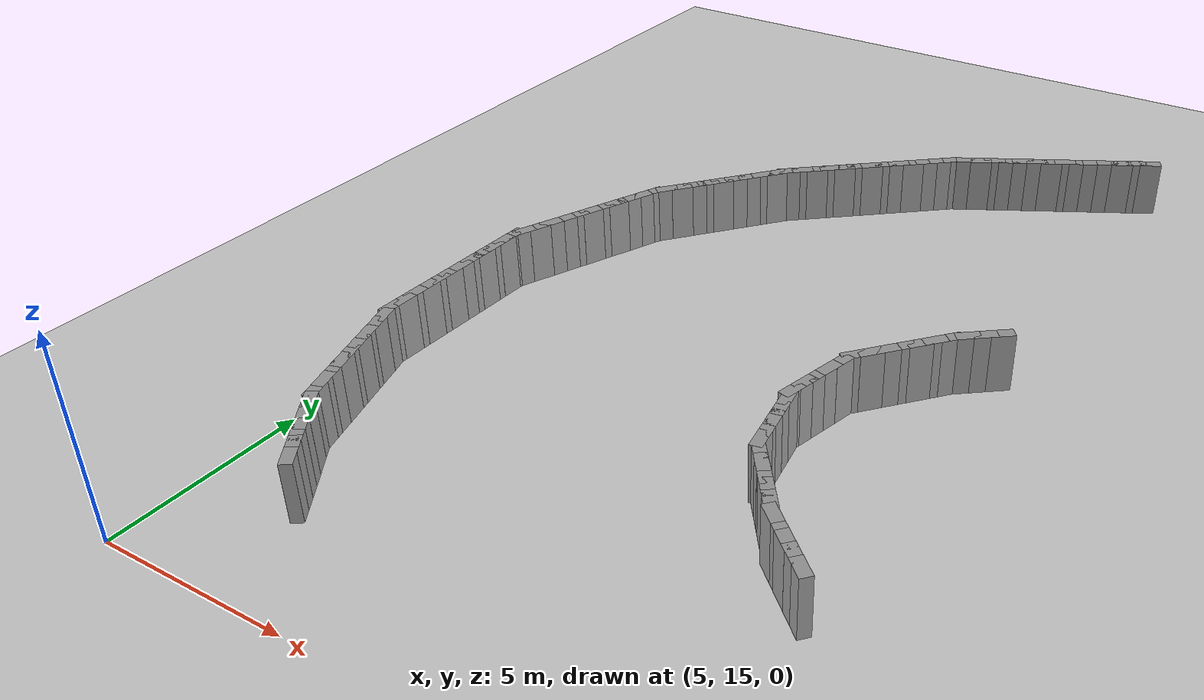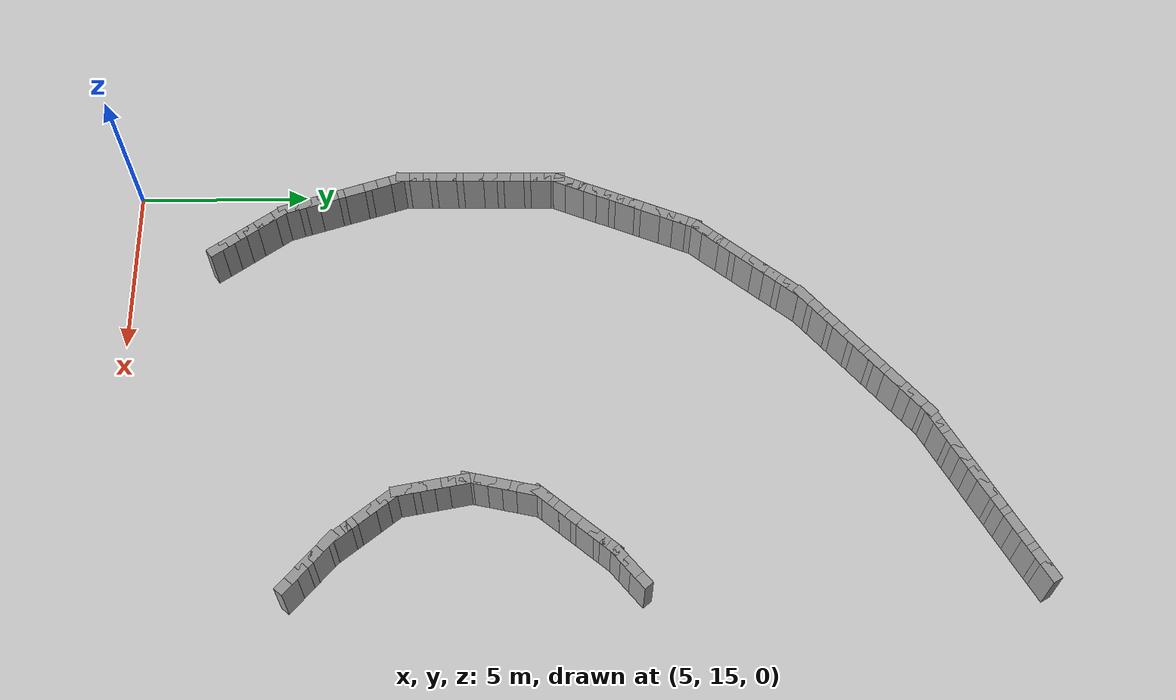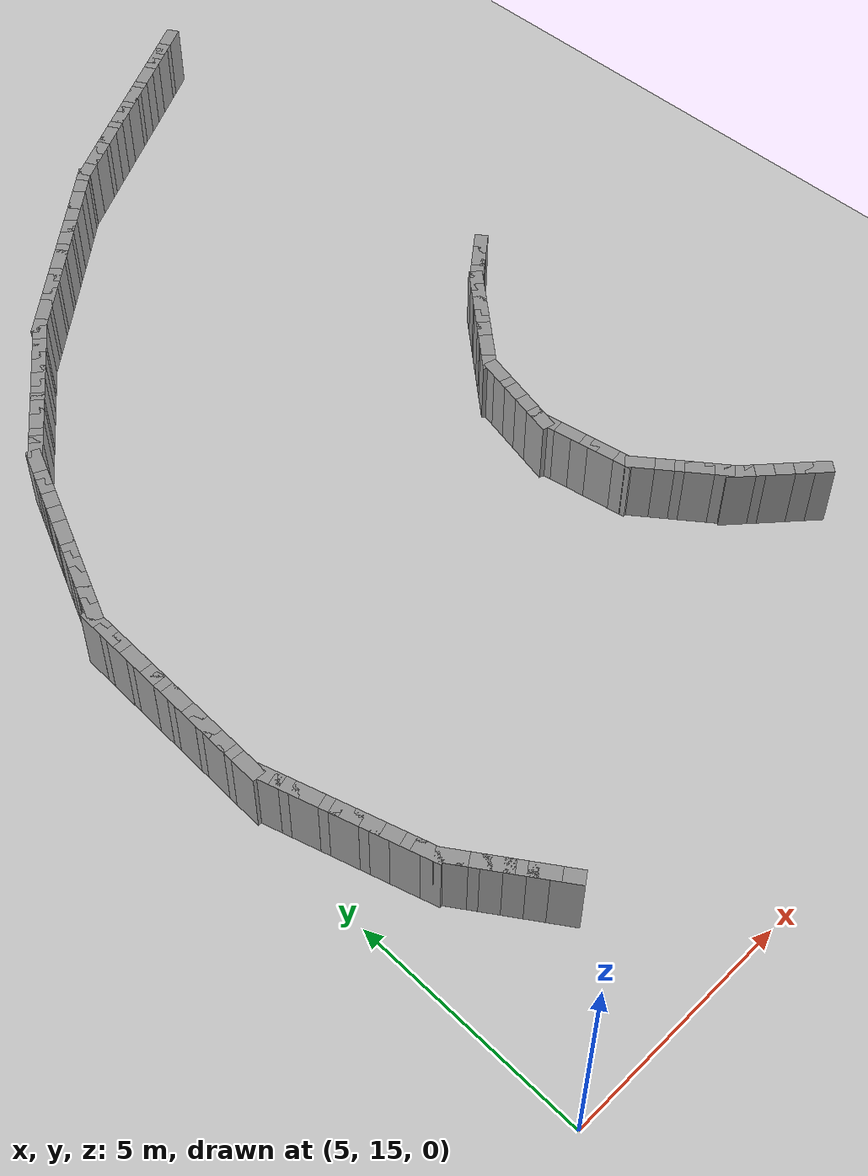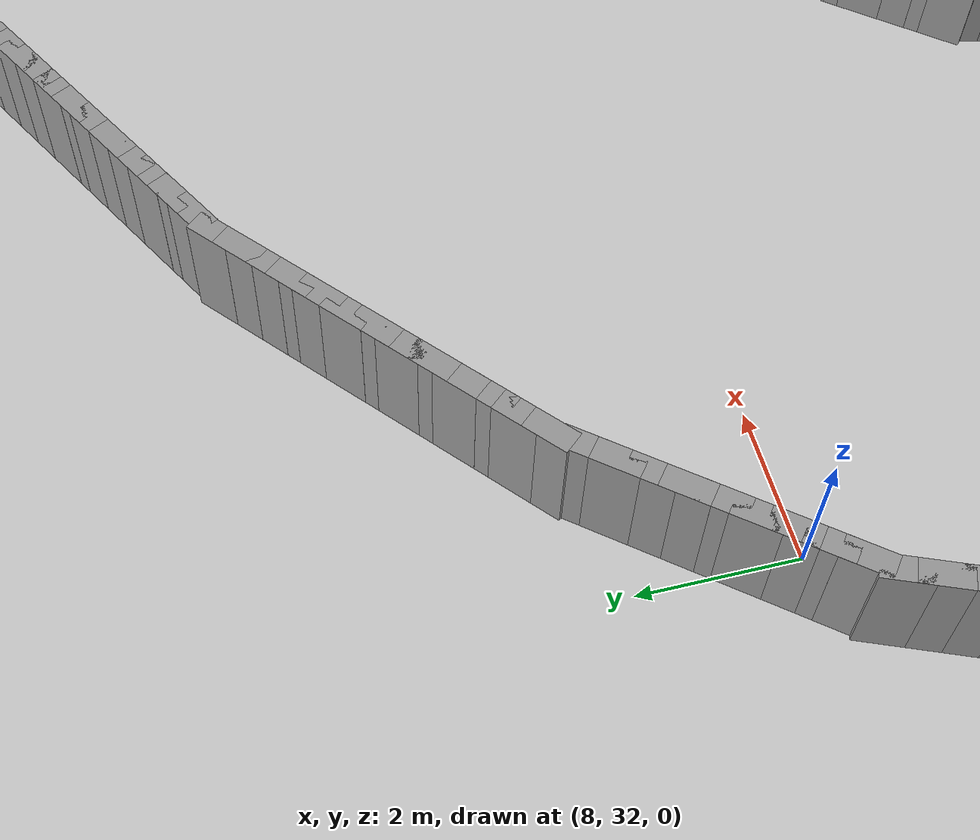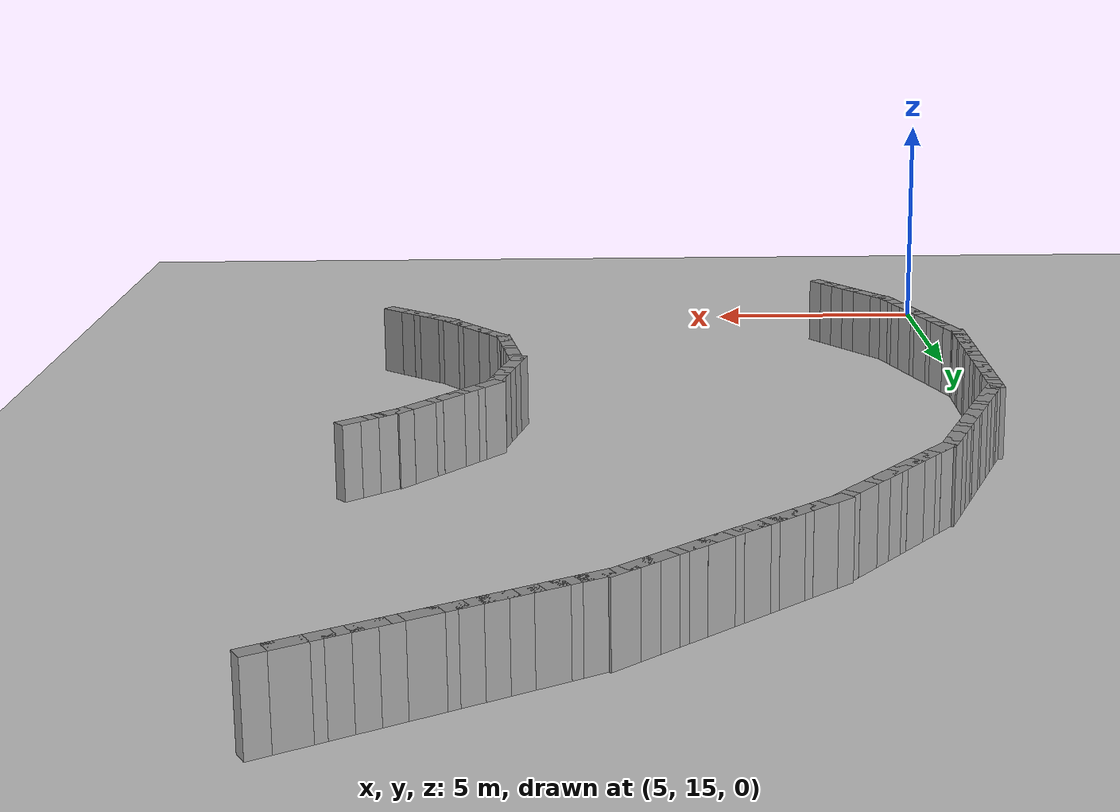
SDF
<sdf version="1.5">
 <world name="ellipse_loop">
  <include><uri>model://sun</uri></include>
  <include><uri>model://ground_plane</uri></include>
  <model name="curbL_0">
   <static>true</static>
   <pose>5.326 27.536 0.750 0 0 -1.592</pose>
   <link name="link">
    <collision name="col"><geometry><box><size>0.600 0.300 1.500</size></box></geometry></collision>
    <visual name="vis">
     <geometry><box><size>0.600 0.300 1.500</size></box></geometry>
     <material><ambient>0.6 0.6 0.6 1</ambient><diffuse>0.6 0.6 0.6 1</diffuse></material>
    </visual>
   </link>
  </model>
  <model name="curbL_1">
   <static>true</static>
   <pose>5.318 27.137 0.750 0 0 -1.592</pose>
   <link name="link">
    <collision name="col"><geometry><box><size>0.600 0.300 1.500</size></box></geometry></collision>
    <visual name="vis">
     <geometry><box><size>0.600 0.300 1.500</size></box></geometry>
     <material><ambient>0.6 0.6 0.6 1</ambient><diffuse>0.6 0.6 0.6 1</diffuse></material>
    </visual>
   </link>
  </model>
  <model name="curbL_2">
   <static>true</static>
   <pose>5.309 26.737 0.750 0 0 -1.592</pose>
   <link name="link">
    <collision name="col"><geometry><box><size>0.600 0.300 1.500</size></box></geometry></collision>
    <visual name="vis">
     <geometry><box><size>0.600 0.300 1.500</size></box></geometry>
     <material><ambient>0.6 0.6 0.6 1</ambient><diffuse>0.6 0.6 0.6 1</diffuse></material>
    </visual>
   </link>
  </model>
  <model name="curbL_3">
   <static>true</static>
   <pose>5.301 26.337 0.750 0 0 -1.592</pose>
   <link name="link">
    <collision name="col"><geometry><box><size>0.600 0.300 1.500</size></box></geometry></collision>
    <visual name="vis">
     <geometry><box><size>0.600 0.300 1.500</size></box></geometry>
     <material><ambient>0.6 0.6 0.6 1</ambient><diffuse>0.6 0.6 0.6 1</diffuse></material>
    </visual>
   </link>
  </model>
  <model name="curbL_4">
   <static>true</static>
   <pose>5.292 25.937 0.750 0 0 -1.592</pose>
   <link name="link">
    <collision name="col"><geometry><box><size>0.600 0.300 1.500</size></box></geometry></collision>
    <visual name="vis">
     <geometry><box><size>0.600 0.300 1.500</size></box></geometry>
     <material><ambient>0.6 0.6 0.6 1</ambient><diffuse>0.6 0.6 0.6 1</diffuse></material>
    </visual>
   </link>
  </model>
  <model name="curbL_5">
   <static>true</static>
   <pose>5.284 25.537 0.750 0 0 -1.592</pose>
   <link name="link">
    <collision name="col"><geometry><box><size>0.600 0.300 1.500</size></box></geometry></collision>
    <visual name="vis">
     <geometry><box><size>0.600 0.300 1.500</size></box></geometry>
     <material><ambient>0.6 0.6 0.6 1</ambient><diffuse>0.6 0.6 0.6 1</diffuse></material>
    </visual>
   </link>
  </model>
  <model name="curbL_6">
   <static>true</static>
   <pose>5.276 25.137 0.750 0 0 -1.592</pose>
   <link name="link">
    <collision name="col"><geometry><box><size>0.600 0.300 1.500</size></box></geometry></collision>
    <visual name="vis">
     <geometry><box><size>0.600 0.300 1.500</size></box></geometry>
     <material><ambient>0.6 0.6 0.6 1</ambient><diffuse>0.6 0.6 0.6 1</diffuse></material>
    </visual>
   </link>
  </model>
  <model name="curbL_7">
   <static>true</static>
   <pose>5.267 24.737 0.750 0 0 -1.592</pose>
   <link name="link">
    <collision name="col"><geometry><box><size>0.600 0.300 1.500</size></box></geometry></collision>
    <visual name="vis">
     <geometry><box><size>0.600 0.300 1.500</size></box></geometry>
     <material><ambient>0.6 0.6 0.6 1</ambient><diffuse>0.6 0.6 0.6 1</diffuse></material>
    </visual>
   </link>
  </model>
  <model name="curbL_8">
   <static>true</static>
   <pose>5.259 24.337 0.750 0 0 -1.592</pose>
   <link name="link">
    <collision name="col"><geometry><box><size>0.600 0.300 1.500</size></box></geometry></collision>
    <visual name="vis">
     <geometry><box><size>0.600 0.300 1.500</size></box></geometry>
     <material><ambient>0.6 0.6 0.6 1</ambient><diffuse>0.6 0.6 0.6 1</diffuse></material>
    </visual>
   </link>
  </model>
  <model name="curbL_9">
   <static>true</static>
   <pose>5.250 23.937 0.750 0 0 -1.592</pose>
   <link name="link">
    <collision name="col"><geometry><box><size>0.600 0.300 1.500</size></box></geometry></collision>
    <visual name="vis">
     <geometry><box><size>0.600 0.300 1.500</size></box></geometry>
     <material><ambient>0.6 0.6 0.6 1</ambient><diffuse>0.6 0.6 0.6 1</diffuse></material>
    </visual>
   </link>
  </model>
  <model name="curbL_10">
   <static>true</static>
   <pose>5.242 23.537 0.750 0 0 -1.592</pose>
   <link name="link">
    <collision name="col"><geometry><box><size>0.600 0.300 1.500</size></box></geometry></collision>
    <visual name="vis">
     <geometry><box><size>0.600 0.300 1.500</size></box></geometry>
     <material><ambient>0.6 0.6 0.6 1</ambient><diffuse>0.6 0.6 0.6 1</diffuse></material>
    </visual>
   </link>
  </model>
  <model name="curbL_11">
   <static>true</static>
   <pose>5.233 23.137 0.750 0 0 -1.592</pose>
   <link name="link">
    <collision name="col"><geometry><box><size>0.600 0.300 1.500</size></box></geometry></collision>
    <visual name="vis">
     <geometry><box><size>0.600 0.300 1.500</size></box></geometry>
     <material><ambient>0.6 0.6 0.6 1</ambient><diffuse>0.6 0.6 0.6 1</diffuse></material>
    </visual>
   </link>
  </model>
  <model name="curbL_12">
   <static>true</static>
   <pose>5.338 22.754 0.750 0 0 -1.268</pose>
   <link name="link">
    <collision name="col"><geometry><box><size>0.600 0.300 1.500</size></box></geometry></collision>
    <visual name="vis">
     <geometry><box><size>0.600 0.300 1.500</size></box></geometry>
     <material><ambient>0.6 0.6 0.6 1</ambient><diffuse>0.6 0.6 0.6 1</diffuse></material>
    </visual>
   </link>
  </model>
  <model name="curbL_13">
   <static>true</static>
   <pose>5.458 22.372 0.750 0 0 -1.268</pose>
   <link name="link">
    <collision name="col"><geometry><box><size>0.600 0.300 1.500</size></box></geometry></collision>
    <visual name="vis">
     <geometry><box><size>0.600 0.300 1.500</size></box></geometry>
     <material><ambient>0.6 0.6 0.6 1</ambient><diffuse>0.6 0.6 0.6 1</diffuse></material>
    </visual>
   </link>
  </model>
  <model name="curbL_14">
   <static>true</static>
   <pose>5.577 21.990 0.750 0 0 -1.268</pose>
   <link name="link">
    <collision name="col"><geometry><box><size>0.600 0.300 1.500</size></box></geometry></collision>
    <visual name="vis">
     <geometry><box><size>0.600 0.300 1.500</size></box></geometry>
     <material><ambient>0.6 0.6 0.6 1</ambient><diffuse>0.6 0.6 0.6 1</diffuse></material>
    </visual>
   </link>
  </model>
  <model name="curbL_15">
   <static>true</static>
   <pose>5.697 21.608 0.750 0 0 -1.268</pose>
   <link name="link">
    <collision name="col"><geometry><box><size>0.600 0.300 1.500</size></box></geometry></collision>
    <visual name="vis">
     <geometry><box><size>0.600 0.300 1.500</size></box></geometry>
     <material><ambient>0.6 0.6 0.6 1</ambient><diffuse>0.6 0.6 0.6 1</diffuse></material>
    </visual>
   </link>
  </model>
  <model name="curbL_16">
   <static>true</static>
   <pose>5.816 21.227 0.750 0 0 -1.268</pose>
   <link name="link">
    <collision name="col"><geometry><box><size>0.600 0.300 1.500</size></box></geometry></collision>
    <visual name="vis">
     <geometry><box><size>0.600 0.300 1.500</size></box></geometry>
     <material><ambient>0.6 0.6 0.6 1</ambient><diffuse>0.6 0.6 0.6 1</diffuse></material>
    </visual>
   </link>
  </model>
  <model name="curbL_17">
   <static>true</static>
   <pose>5.936 20.845 0.750 0 0 -1.268</pose>
   <link name="link">
    <collision name="col"><geometry><box><size>0.600 0.300 1.500</size></box></geometry></collision>
    <visual name="vis">
     <geometry><box><size>0.600 0.300 1.500</size></box></geometry>
     <material><ambient>0.6 0.6 0.6 1</ambient><diffuse>0.6 0.6 0.6 1</diffuse></material>
    </visual>
   </link>
  </model>
  <model name="curbL_18">
   <static>true</static>
   <pose>6.055 20.463 0.750 0 0 -1.268</pose>
   <link name="link">
    <collision name="col"><geometry><box><size>0.600 0.300 1.500</size></box></geometry></collision>
    <visual name="vis">
     <geometry><box><size>0.600 0.300 1.500</size></box></geometry>
     <material><ambient>0.6 0.6 0.6 1</ambient><diffuse>0.6 0.6 0.6 1</diffuse></material>
    </visual>
   </link>
  </model>
  <model name="curbL_19">
   <static>true</static>
   <pose>6.174 20.081 0.750 0 0 -1.268</pose>
   <link name="link">
    <collision name="col"><geometry><box><size>0.600 0.300 1.500</size></box></geometry></collision>
    <visual name="vis">
     <geometry><box><size>0.600 0.300 1.500</size></box></geometry>
     <material><ambient>0.6 0.6 0.6 1</ambient><diffuse>0.6 0.6 0.6 1</diffuse></material>
    </visual>
   </link>
  </model>
  <model name="curbL_20">
   <static>true</static>
   <pose>6.294 19.700 0.750 0 0 -1.268</pose>
   <link name="link">
    <collision name="col"><geometry><box><size>0.600 0.300 1.500</size></box></geometry></collision>
    <visual name="vis">
     <geometry><box><size>0.600 0.300 1.500</size></box></geometry>
     <material><ambient>0.6 0.6 0.6 1</ambient><diffuse>0.6 0.6 0.6 1</diffuse></material>
    </visual>
   </link>
  </model>
  <model name="curbL_21">
   <static>true</static>
   <pose>6.488 19.354 0.750 0 0 -0.961</pose>
   <link name="link">
    <collision name="col"><geometry><box><size>0.600 0.300 1.500</size></box></geometry></collision>
    <visual name="vis">
     <geometry><box><size>0.600 0.300 1.500</size></box></geometry>
     <material><ambient>0.6 0.6 0.6 1</ambient><diffuse>0.6 0.6 0.6 1</diffuse></material>
    </visual>
   </link>
  </model>
  <model name="curbL_22">
   <static>true</static>
   <pose>6.717 19.027 0.750 0 0 -0.961</pose>
   <link name="link">
    <collision name="col"><geometry><box><size>0.600 0.300 1.500</size></box></geometry></collision>
    <visual name="vis">
     <geometry><box><size>0.600 0.300 1.500</size></box></geometry>
     <material><ambient>0.6 0.6 0.6 1</ambient><diffuse>0.6 0.6 0.6 1</diffuse></material>
    </visual>
   </link>
  </model>
  <model name="curbL_23">
   <static>true</static>
   <pose>6.946 18.699 0.750 0 0 -0.961</pose>
   <link name="link">
    <collision name="col"><geometry><box><size>0.600 0.300 1.500</size></box></geometry></collision>
    <visual name="vis">
     <geometry><box><size>0.600 0.300 1.500</size></box></geometry>
     <material><ambient>0.6 0.6 0.6 1</ambient><diffuse>0.6 0.6 0.6 1</diffuse></material>
    </visual>
   </link>
  </model>
  <model name="curbL_24">
   <static>true</static>
   <pose>7.175 18.371 0.750 0 0 -0.961</pose>
   <link name="link">
    <collision name="col"><geometry><box><size>0.600 0.300 1.500</size></box></geometry></collision>
    <visual name="vis">
     <geometry><box><size>0.600 0.300 1.500</size></box></geometry>
     <material><ambient>0.6 0.6 0.6 1</ambient><diffuse>0.6 0.6 0.6 1</diffuse></material>
    </visual>
   </link>
  </model>
  <model name="curbL_25">
   <static>true</static>
   <pose>7.404 18.043 0.750 0 0 -0.961</pose>
   <link name="link">
    <collision name="col"><geometry><box><size>0.600 0.300 1.500</size></box></geometry></collision>
    <visual name="vis">
     <geometry><box><size>0.600 0.300 1.500</size></box></geometry>
     <material><ambient>0.6 0.6 0.6 1</ambient><diffuse>0.6 0.6 0.6 1</diffuse></material>
    </visual>
   </link>
  </model>
  <model name="curbL_26">
   <static>true</static>
   <pose>7.633 17.715 0.750 0 0 -0.961</pose>
   <link name="link">
    <collision name="col"><geometry><box><size>0.600 0.300 1.500</size></box></geometry></collision>
    <visual name="vis">
     <geometry><box><size>0.600 0.300 1.500</size></box></geometry>
     <material><ambient>0.6 0.6 0.6 1</ambient><diffuse>0.6 0.6 0.6 1</diffuse></material>
    </visual>
   </link>
  </model>
  <model name="curbL_392">
   <static>true</static>
   <pose>17.973 40.515 0.750 0 0 -2.632</pose>
   <link name="link">
    <collision name="col"><geometry><box><size>0.600 0.300 1.500</size></box></geometry></collision>
    <visual name="vis">
     <geometry><box><size>0.600 0.300 1.500</size></box></geometry>
     <material><ambient>0.6 0.6 0.6 1</ambient><diffuse>0.6 0.6 0.6 1</diffuse></material>
    </visual>
   </link>
  </model>
  <model name="curbL_393">
   <static>true</static>
   <pose>17.624 40.320 0.750 0 0 -2.632</pose>
   <link name="link">
    <collision name="col"><geometry><box><size>0.600 0.300 1.500</size></box></geometry></collision>
    <visual name="vis">
     <geometry><box><size>0.600 0.300 1.500</size></box></geometry>
     <material><ambient>0.6 0.6 0.6 1</ambient><diffuse>0.6 0.6 0.6 1</diffuse></material>
    </visual>
   </link>
  </model>
  <model name="curbL_394">
   <static>true</static>
   <pose>17.275 40.124 0.750 0 0 -2.632</pose>
   <link name="link">
    <collision name="col"><geometry><box><size>0.600 0.300 1.500</size></box></geometry></collision>
    <visual name="vis">
     <geometry><box><size>0.600 0.300 1.500</size></box></geometry>
     <material><ambient>0.6 0.6 0.6 1</ambient><diffuse>0.6 0.6 0.6 1</diffuse></material>
    </visual>
   </link>
  </model>
  <model name="curbL_395">
   <static>true</static>
   <pose>16.926 39.929 0.750 0 0 -2.632</pose>
   <link name="link">
    <collision name="col"><geometry><box><size>0.600 0.300 1.500</size></box></geometry></collision>
    <visual name="vis">
     <geometry><box><size>0.600 0.300 1.500</size></box></geometry>
     <material><ambient>0.6 0.6 0.6 1</ambient><diffuse>0.6 0.6 0.6 1</diffuse></material>
    </visual>
   </link>
  </model>
  <model name="curbL_396">
   <static>true</static>
   <pose>16.577 39.734 0.750 0 0 -2.632</pose>
   <link name="link">
    <collision name="col"><geometry><box><size>0.600 0.300 1.500</size></box></geometry></collision>
    <visual name="vis">
     <geometry><box><size>0.600 0.300 1.500</size></box></geometry>
     <material><ambient>0.6 0.6 0.6 1</ambient><diffuse>0.6 0.6 0.6 1</diffuse></material>
    </visual>
   </link>
  </model>
  <model name="curbL_397">
   <static>true</static>
   <pose>16.228 39.539 0.750 0 0 -2.632</pose>
   <link name="link">
    <collision name="col"><geometry><box><size>0.600 0.300 1.500</size></box></geometry></collision>
    <visual name="vis">
     <geometry><box><size>0.600 0.300 1.500</size></box></geometry>
     <material><ambient>0.6 0.6 0.6 1</ambient><diffuse>0.6 0.6 0.6 1</diffuse></material>
    </visual>
   </link>
  </model>
  <model name="curbL_398">
   <static>true</static>
   <pose>15.879 39.344 0.750 0 0 -2.632</pose>
   <link name="link">
    <collision name="col"><geometry><box><size>0.600 0.300 1.500</size></box></geometry></collision>
    <visual name="vis">
     <geometry><box><size>0.600 0.300 1.500</size></box></geometry>
     <material><ambient>0.6 0.6 0.6 1</ambient><diffuse>0.6 0.6 0.6 1</diffuse></material>
    </visual>
   </link>
  </model>
  <model name="curbL_399">
   <static>true</static>
   <pose>15.529 39.148 0.750 0 0 -2.632</pose>
   <link name="link">
    <collision name="col"><geometry><box><size>0.600 0.300 1.500</size></box></geometry></collision>
    <visual name="vis">
     <geometry><box><size>0.600 0.300 1.500</size></box></geometry>
     <material><ambient>0.6 0.6 0.6 1</ambient><diffuse>0.6 0.6 0.6 1</diffuse></material>
    </visual>
   </link>
  </model>
  <model name="curbL_400">
   <static>true</static>
   <pose>15.180 38.953 0.750 0 0 -2.632</pose>
   <link name="link">
    <collision name="col"><geometry><box><size>0.600 0.300 1.500</size></box></geometry></collision>
    <visual name="vis">
     <geometry><box><size>0.600 0.300 1.500</size></box></geometry>
     <material><ambient>0.6 0.6 0.6 1</ambient><diffuse>0.6 0.6 0.6 1</diffuse></material>
    </visual>
   </link>
  </model>
  <model name="curbL_401">
   <static>true</static>
   <pose>14.831 38.758 0.750 0 0 -2.632</pose>
   <link name="link">
    <collision name="col"><geometry><box><size>0.600 0.300 1.500</size></box></geometry></collision>
    <visual name="vis">
     <geometry><box><size>0.600 0.300 1.500</size></box></geometry>
     <material><ambient>0.6 0.6 0.6 1</ambient><diffuse>0.6 0.6 0.6 1</diffuse></material>
    </visual>
   </link>
  </model>
  <model name="curbL_402">
   <static>true</static>
   <pose>14.482 38.563 0.750 0 0 -2.632</pose>
   <link name="link">
    <collision name="col"><geometry><box><size>0.600 0.300 1.500</size></box></geometry></collision>
    <visual name="vis">
     <geometry><box><size>0.600 0.300 1.500</size></box></geometry>
     <material><ambient>0.6 0.6 0.6 1</ambient><diffuse>0.6 0.6 0.6 1</diffuse></material>
    </visual>
   </link>
  </model>
  <model name="curbL_403">
   <static>true</static>
   <pose>14.133 38.368 0.750 0 0 -2.632</pose>
   <link name="link">
    <collision name="col"><geometry><box><size>0.600 0.300 1.500</size></box></geometry></collision>
    <visual name="vis">
     <geometry><box><size>0.600 0.300 1.500</size></box></geometry>
     <material><ambient>0.6 0.6 0.6 1</ambient><diffuse>0.6 0.6 0.6 1</diffuse></material>
    </visual>
   </link>
  </model>
  <model name="curbL_404">
   <static>true</static>
   <pose>13.784 38.172 0.750 0 0 -2.632</pose>
   <link name="link">
    <collision name="col"><geometry><box><size>0.600 0.300 1.500</size></box></geometry></collision>
    <visual name="vis">
     <geometry><box><size>0.600 0.300 1.500</size></box></geometry>
     <material><ambient>0.6 0.6 0.6 1</ambient><diffuse>0.6 0.6 0.6 1</diffuse></material>
    </visual>
   </link>
  </model>
  <model name="curbL_405">
   <static>true</static>
   <pose>13.435 37.977 0.750 0 0 -2.632</pose>
   <link name="link">
    <collision name="col"><geometry><box><size>0.600 0.300 1.500</size></box></geometry></collision>
    <visual name="vis">
     <geometry><box><size>0.600 0.300 1.500</size></box></geometry>
     <material><ambient>0.6 0.6 0.6 1</ambient><diffuse>0.6 0.6 0.6 1</diffuse></material>
    </visual>
   </link>
  </model>
  <model name="curbL_406">
   <static>true</static>
   <pose>13.092 37.773 0.750 0 0 -2.429</pose>
   <link name="link">
    <collision name="col"><geometry><box><size>0.600 0.300 1.500</size></box></geometry></collision>
    <visual name="vis">
     <geometry><box><size>0.600 0.300 1.500</size></box></geometry>
     <material><ambient>0.6 0.6 0.6 1</ambient><diffuse>0.6 0.6 0.6 1</diffuse></material>
    </visual>
   </link>
  </model>
  <model name="curbL_407">
   <static>true</static>
   <pose>12.789 37.511 0.750 0 0 -2.429</pose>
   <link name="link">
    <collision name="col"><geometry><box><size>0.600 0.300 1.500</size></box></geometry></collision>
    <visual name="vis">
     <geometry><box><size>0.600 0.300 1.500</size></box></geometry>
     <material><ambient>0.6 0.6 0.6 1</ambient><diffuse>0.6 0.6 0.6 1</diffuse></material>
    </visual>
   </link>
  </model>
  <model name="curbL_408">
   <static>true</static>
   <pose>12.487 37.250 0.750 0 0 -2.429</pose>
   <link name="link">
    <collision name="col"><geometry><box><size>0.600 0.300 1.500</size></box></geometry></collision>
    <visual name="vis">
     <geometry><box><size>0.600 0.300 1.500</size></box></geometry>
     <material><ambient>0.6 0.6 0.6 1</ambient><diffuse>0.6 0.6 0.6 1</diffuse></material>
    </visual>
   </link>
  </model>
  <model name="curbL_409">
   <static>true</static>
   <pose>12.184 36.988 0.750 0 0 -2.429</pose>
   <link name="link">
    <collision name="col"><geometry><box><size>0.600 0.300 1.500</size></box></geometry></collision>
    <visual name="vis">
     <geometry><box><size>0.600 0.300 1.500</size></box></geometry>
     <material><ambient>0.6 0.6 0.6 1</ambient><diffuse>0.6 0.6 0.6 1</diffuse></material>
    </visual>
   </link>
  </model>
  <model name="curbL_410">
   <static>true</static>
   <pose>11.881 36.727 0.750 0 0 -2.429</pose>
   <link name="link">
    <collision name="col"><geometry><box><size>0.600 0.300 1.500</size></box></geometry></collision>
    <visual name="vis">
     <geometry><box><size>0.600 0.300 1.500</size></box></geometry>
     <material><ambient>0.6 0.6 0.6 1</ambient><diffuse>0.6 0.6 0.6 1</diffuse></material>
    </visual>
   </link>
  </model>
  <model name="curbL_411">
   <static>true</static>
   <pose>11.578 36.466 0.750 0 0 -2.429</pose>
   <link name="link">
    <collision name="col"><geometry><box><size>0.600 0.300 1.500</size></box></geometry></collision>
    <visual name="vis">
     <geometry><box><size>0.600 0.300 1.500</size></box></geometry>
     <material><ambient>0.6 0.6 0.6 1</ambient><diffuse>0.6 0.6 0.6 1</diffuse></material>
    </visual>
   </link>
  </model>
  <model name="curbL_412">
   <static>true</static>
   <pose>11.276 36.204 0.750 0 0 -2.429</pose>
   <link name="link">
    <collision name="col"><geometry><box><size>0.600 0.300 1.500</size></box></geometry></collision>
    <visual name="vis">
     <geometry><box><size>0.600 0.300 1.500</size></box></geometry>
     <material><ambient>0.6 0.6 0.6 1</ambient><diffuse>0.6 0.6 0.6 1</diffuse></material>
    </visual>
   </link>
  </model>
  <model name="curbL_413">
   <static>true</static>
   <pose>10.973 35.943 0.750 0 0 -2.429</pose>
   <link name="link">
    <collision name="col"><geometry><box><size>0.600 0.300 1.500</size></box></geometry></collision>
    <visual name="vis">
     <geometry><box><size>0.600 0.300 1.500</size></box></geometry>
     <material><ambient>0.6 0.6 0.6 1</ambient><diffuse>0.6 0.6 0.6 1</diffuse></material>
    </visual>
   </link>
  </model>
  <model name="curbL_414">
   <static>true</static>
   <pose>10.670 35.681 0.750 0 0 -2.429</pose>
   <link name="link">
    <collision name="col"><geometry><box><size>0.600 0.300 1.500</size></box></geometry></collision>
    <visual name="vis">
     <geometry><box><size>0.600 0.300 1.500</size></box></geometry>
     <material><ambient>0.6 0.6 0.6 1</ambient><diffuse>0.6 0.6 0.6 1</diffuse></material>
    </visual>
   </link>
  </model>
  <model name="curbL_415">
   <static>true</static>
   <pose>10.367 35.420 0.750 0 0 -2.429</pose>
   <link name="link">
    <collision name="col"><geometry><box><size>0.600 0.300 1.500</size></box></geometry></collision>
    <visual name="vis">
     <geometry><box><size>0.600 0.300 1.500</size></box></geometry>
     <material><ambient>0.6 0.6 0.6 1</ambient><diffuse>0.6 0.6 0.6 1</diffuse></material>
    </visual>
   </link>
  </model>
  <model name="curbL_416">
   <static>true</static>
   <pose>10.065 35.158 0.750 0 0 -2.429</pose>
   <link name="link">
    <collision name="col"><geometry><box><size>0.600 0.300 1.500</size></box></geometry></collision>
    <visual name="vis">
     <geometry><box><size>0.600 0.300 1.500</size></box></geometry>
     <material><ambient>0.6 0.6 0.6 1</ambient><diffuse>0.6 0.6 0.6 1</diffuse></material>
    </visual>
   </link>
  </model>
  <model name="curbL_417">
   <static>true</static>
   <pose>9.762 34.897 0.750 0 0 -2.429</pose>
   <link name="link">
    <collision name="col"><geometry><box><size>0.600 0.300 1.500</size></box></geometry></collision>
    <visual name="vis">
     <geometry><box><size>0.600 0.300 1.500</size></box></geometry>
     <material><ambient>0.6 0.6 0.6 1</ambient><diffuse>0.6 0.6 0.6 1</diffuse></material>
    </visual>
   </link>
  </model>
  <model name="curbL_418">
   <static>true</static>
   <pose>9.459 34.635 0.750 0 0 -2.429</pose>
   <link name="link">
    <collision name="col"><geometry><box><size>0.600 0.300 1.500</size></box></geometry></collision>
    <visual name="vis">
     <geometry><box><size>0.600 0.300 1.500</size></box></geometry>
     <material><ambient>0.6 0.6 0.6 1</ambient><diffuse>0.6 0.6 0.6 1</diffuse></material>
    </visual>
   </link>
  </model>
  <model name="curbL_419">
   <static>true</static>
   <pose>9.201 34.331 0.750 0 0 -2.250</pose>
   <link name="link">
    <collision name="col"><geometry><box><size>0.600 0.300 1.500</size></box></geometry></collision>
    <visual name="vis">
     <geometry><box><size>0.600 0.300 1.500</size></box></geometry>
     <material><ambient>0.6 0.6 0.6 1</ambient><diffuse>0.6 0.6 0.6 1</diffuse></material>
    </visual>
   </link>
  </model>
  <model name="curbL_420">
   <static>true</static>
   <pose>8.949 34.020 0.750 0 0 -2.250</pose>
   <link name="link">
    <collision name="col"><geometry><box><size>0.600 0.300 1.500</size></box></geometry></collision>
    <visual name="vis">
     <geometry><box><size>0.600 0.300 1.500</size></box></geometry>
     <material><ambient>0.6 0.6 0.6 1</ambient><diffuse>0.6 0.6 0.6 1</diffuse></material>
    </visual>
   </link>
  </model>
  <model name="curbL_421">
   <static>true</static>
   <pose>8.698 33.709 0.750 0 0 -2.250</pose>
   <link name="link">
    <collision name="col"><geometry><box><size>0.600 0.300 1.500</size></box></geometry></collision>
    <visual name="vis">
     <geometry><box><size>0.600 0.300 1.500</size></box></geometry>
     <material><ambient>0.6 0.6 0.6 1</ambient><diffuse>0.6 0.6 0.6 1</diffuse></material>
    </visual>
   </link>
  </model>
  <model name="curbL_422">
   <static>true</static>
   <pose>8.447 33.398 0.750 0 0 -2.250</pose>
   <link name="link">
    <collision name="col"><geometry><box><size>0.600 0.300 1.500</size></box></geometry></collision>
    <visual name="vis">
     <geometry><box><size>0.600 0.300 1.500</size></box></geometry>
     <material><ambient>0.6 0.6 0.6 1</ambient><diffuse>0.6 0.6 0.6 1</diffuse></material>
    </visual>
   </link>
  </model>
  <model name="curbL_423">
   <static>true</static>
   <pose>8.196 33.086 0.750 0 0 -2.250</pose>
   <link name="link">
    <collision name="col"><geometry><box><size>0.600 0.300 1.500</size></box></geometry></collision>
    <visual name="vis">
     <geometry><box><size>0.600 0.300 1.500</size></box></geometry>
     <material><ambient>0.6 0.6 0.6 1</ambient><diffuse>0.6 0.6 0.6 1</diffuse></material>
    </visual>
   </link>
  </model>
  <model name="curbL_424">
   <static>true</static>
   <pose>7.944 32.775 0.750 0 0 -2.250</pose>
   <link name="link">
    <collision name="col"><geometry><box><size>0.600 0.300 1.500</size></box></geometry></collision>
    <visual name="vis">
     <geometry><box><size>0.600 0.300 1.500</size></box></geometry>
     <material><ambient>0.6 0.6 0.6 1</ambient><diffuse>0.6 0.6 0.6 1</diffuse></material>
    </visual>
   </link>
  </model>
  <model name="curbL_425">
   <static>true</static>
   <pose>7.693 32.464 0.750 0 0 -2.250</pose>
   <link name="link">
    <collision name="col"><geometry><box><size>0.600 0.300 1.500</size></box></geometry></collision>
    <visual name="vis">
     <geometry><box><size>0.600 0.300 1.500</size></box></geometry>
     <material><ambient>0.6 0.6 0.6 1</ambient><diffuse>0.6 0.6 0.6 1</diffuse></material>
    </visual>
   </link>
  </model>
  <model name="curbL_426">
   <static>true</static>
   <pose>7.442 32.153 0.750 0 0 -2.250</pose>
   <link name="link">
    <collision name="col"><geometry><box><size>0.600 0.300 1.500</size></box></geometry></collision>
    <visual name="vis">
     <geometry><box><size>0.600 0.300 1.500</size></box></geometry>
     <material><ambient>0.6 0.6 0.6 1</ambient><diffuse>0.6 0.6 0.6 1</diffuse></material>
    </visual>
   </link>
  </model>
  <model name="curbL_427">
   <static>true</static>
   <pose>7.190 31.842 0.750 0 0 -2.250</pose>
   <link name="link">
    <collision name="col"><geometry><box><size>0.600 0.300 1.500</size></box></geometry></collision>
    <visual name="vis">
     <geometry><box><size>0.600 0.300 1.500</size></box></geometry>
     <material><ambient>0.6 0.6 0.6 1</ambient><diffuse>0.6 0.6 0.6 1</diffuse></material>
    </visual>
   </link>
  </model>
  <model name="curbL_428">
   <static>true</static>
   <pose>6.963 31.516 0.750 0 0 -1.961</pose>
   <link name="link">
    <collision name="col"><geometry><box><size>0.600 0.300 1.500</size></box></geometry></collision>
    <visual name="vis">
     <geometry><box><size>0.600 0.300 1.500</size></box></geometry>
     <material><ambient>0.6 0.6 0.6 1</ambient><diffuse>0.6 0.6 0.6 1</diffuse></material>
    </visual>
   </link>
  </model>
  <model name="curbL_429">
   <static>true</static>
   <pose>6.811 31.146 0.750 0 0 -1.961</pose>
   <link name="link">
    <collision name="col"><geometry><box><size>0.600 0.300 1.500</size></box></geometry></collision>
    <visual name="vis">
     <geometry><box><size>0.600 0.300 1.500</size></box></geometry>
     <material><ambient>0.6 0.6 0.6 1</ambient><diffuse>0.6 0.6 0.6 1</diffuse></material>
    </visual>
   </link>
  </model>
  <model name="curbL_430">
   <static>true</static>
   <pose>6.659 30.776 0.750 0 0 -1.961</pose>
   <link name="link">
    <collision name="col"><geometry><box><size>0.600 0.300 1.500</size></box></geometry></collision>
    <visual name="vis">
     <geometry><box><size>0.600 0.300 1.500</size></box></geometry>
     <material><ambient>0.6 0.6 0.6 1</ambient><diffuse>0.6 0.6 0.6 1</diffuse></material>
    </visual>
   </link>
  </model>
  <model name="curbL_431">
   <static>true</static>
   <pose>6.507 30.406 0.750 0 0 -1.961</pose>
   <link name="link">
    <collision name="col"><geometry><box><size>0.600 0.300 1.500</size></box></geometry></collision>
    <visual name="vis">
     <geometry><box><size>0.600 0.300 1.500</size></box></geometry>
     <material><ambient>0.6 0.6 0.6 1</ambient><diffuse>0.6 0.6 0.6 1</diffuse></material>
    </visual>
   </link>
  </model>
  <model name="curbL_432">
   <static>true</static>
   <pose>6.354 30.036 0.750 0 0 -1.961</pose>
   <link name="link">
    <collision name="col"><geometry><box><size>0.600 0.300 1.500</size></box></geometry></collision>
    <visual name="vis">
     <geometry><box><size>0.600 0.300 1.500</size></box></geometry>
     <material><ambient>0.6 0.6 0.6 1</ambient><diffuse>0.6 0.6 0.6 1</diffuse></material>
    </visual>
   </link>
  </model>
  <model name="curbL_433">
   <static>true</static>
   <pose>6.202 29.666 0.750 0 0 -1.961</pose>
   <link name="link">
    <collision name="col"><geometry><box><size>0.600 0.300 1.500</size></box></geometry></collision>
    <visual name="vis">
     <geometry><box><size>0.600 0.300 1.500</size></box></geometry>
     <material><ambient>0.6 0.6 0.6 1</ambient><diffuse>0.6 0.6 0.6 1</diffuse></material>
    </visual>
   </link>
  </model>
  <model name="curbL_434">
   <static>true</static>
   <pose>6.050 29.297 0.750 0 0 -1.961</pose>
   <link name="link">
    <collision name="col"><geometry><box><size>0.600 0.300 1.500</size></box></geometry></collision>
    <visual name="vis">
     <geometry><box><size>0.600 0.300 1.500</size></box></geometry>
     <material><ambient>0.6 0.6 0.6 1</ambient><diffuse>0.6 0.6 0.6 1</diffuse></material>
    </visual>
   </link>
  </model>
  <model name="curbL_435">
   <static>true</static>
   <pose>5.898 28.927 0.750 0 0 -1.961</pose>
   <link name="link">
    <collision name="col"><geometry><box><size>0.600 0.300 1.500</size></box></geometry></collision>
    <visual name="vis">
     <geometry><box><size>0.600 0.300 1.500</size></box></geometry>
     <material><ambient>0.6 0.6 0.6 1</ambient><diffuse>0.6 0.6 0.6 1</diffuse></material>
    </visual>
   </link>
  </model>
  <model name="curbL_436">
   <static>true</static>
   <pose>5.746 28.557 0.750 0 0 -1.961</pose>
   <link name="link">
    <collision name="col"><geometry><box><size>0.600 0.300 1.500</size></box></geometry></collision>
    <visual name="vis">
     <geometry><box><size>0.600 0.300 1.500</size></box></geometry>
     <material><ambient>0.6 0.6 0.6 1</ambient><diffuse>0.6 0.6 0.6 1</diffuse></material>
    </visual>
   </link>
  </model>
  <model name="curbL_437">
   <static>true</static>
   <pose>5.594 28.187 0.750 0 0 -1.961</pose>
   <link name="link">
    <collision name="col"><geometry><box><size>0.600 0.300 1.500</size></box></geometry></collision>
    <visual name="vis">
     <geometry><box><size>0.600 0.300 1.500</size></box></geometry>
     <material><ambient>0.6 0.6 0.6 1</ambient><diffuse>0.6 0.6 0.6 1</diffuse></material>
    </visual>
   </link>
  </model>
  <model name="curbL_438">
   <static>true</static>
   <pose>5.441 27.817 0.750 0 0 -1.961</pose>
   <link name="link">
    <collision name="col"><geometry><box><size>0.600 0.300 1.500</size></box></geometry></collision>
    <visual name="vis">
     <geometry><box><size>0.600 0.300 1.500</size></box></geometry>
     <material><ambient>0.6 0.6 0.6 1</ambient><diffuse>0.6 0.6 0.6 1</diffuse></material>
    </visual>
   </link>
  </model>
  <model name="curbR_0">
   <static>true</static>
   <pose>15.018 25.147 0.750 0 0 1.349</pose>
   <link name="link">
    <collision name="col"><geometry><box><size>0.600 0.300 1.500</size></box></geometry></collision>
    <visual name="vis">
     <geometry><box><size>0.600 0.300 1.500</size></box></geometry>
     <material><ambient>0.6 0.6 0.6 1</ambient><diffuse>0.6 0.6 0.6 1</diffuse></material>
    </visual>
   </link>
  </model>
  <model name="curbR_1">
   <static>true</static>
   <pose>15.106 25.537 0.750 0 0 1.349</pose>
   <link name="link">
    <collision name="col"><geometry><box><size>0.600 0.300 1.500</size></box></geometry></collision>
    <visual name="vis">
     <geometry><box><size>0.600 0.300 1.500</size></box></geometry>
     <material><ambient>0.6 0.6 0.6 1</ambient><diffuse>0.6 0.6 0.6 1</diffuse></material>
    </visual>
   </link>
  </model>
  <model name="curbR_2">
   <static>true</static>
   <pose>15.194 25.927 0.750 0 0 1.349</pose>
   <link name="link">
    <collision name="col"><geometry><box><size>0.600 0.300 1.500</size></box></geometry></collision>
    <visual name="vis">
     <geometry><box><size>0.600 0.300 1.500</size></box></geometry>
     <material><ambient>0.6 0.6 0.6 1</ambient><diffuse>0.6 0.6 0.6 1</diffuse></material>
    </visual>
   </link>
  </model>
  <model name="curbR_3">
   <static>true</static>
   <pose>15.282 26.317 0.750 0 0 1.349</pose>
   <link name="link">
    <collision name="col"><geometry><box><size>0.600 0.300 1.500</size></box></geometry></collision>
    <visual name="vis">
     <geometry><box><size>0.600 0.300 1.500</size></box></geometry>
     <material><ambient>0.6 0.6 0.6 1</ambient><diffuse>0.6 0.6 0.6 1</diffuse></material>
    </visual>
   </link>
  </model>
  <model name="curbR_4">
   <static>true</static>
   <pose>15.371 26.707 0.750 0 0 1.349</pose>
   <link name="link">
    <collision name="col"><geometry><box><size>0.600 0.300 1.500</size></box></geometry></collision>
    <visual name="vis">
     <geometry><box><size>0.600 0.300 1.500</size></box></geometry>
     <material><ambient>0.6 0.6 0.6 1</ambient><diffuse>0.6 0.6 0.6 1</diffuse></material>
    </visual>
   </link>
  </model>
  <model name="curbR_5">
   <static>true</static>
   <pose>15.499 27.077 0.750 0 0 0.872</pose>
   <link name="link">
    <collision name="col"><geometry><box><size>0.600 0.300 1.500</size></box></geometry></collision>
    <visual name="vis">
     <geometry><box><size>0.600 0.300 1.500</size></box></geometry>
     <material><ambient>0.6 0.6 0.6 1</ambient><diffuse>0.6 0.6 0.6 1</diffuse></material>
    </visual>
   </link>
  </model>
  <model name="curbR_6">
   <static>true</static>
   <pose>15.757 27.383 0.750 0 0 0.872</pose>
   <link name="link">
    <collision name="col"><geometry><box><size>0.600 0.300 1.500</size></box></geometry></collision>
    <visual name="vis">
     <geometry><box><size>0.600 0.300 1.500</size></box></geometry>
     <material><ambient>0.6 0.6 0.6 1</ambient><diffuse>0.6 0.6 0.6 1</diffuse></material>
    </visual>
   </link>
  </model>
  <model name="curbR_7">
   <static>true</static>
   <pose>16.014 27.690 0.750 0 0 0.872</pose>
   <link name="link">
    <collision name="col"><geometry><box><size>0.600 0.300 1.500</size></box></geometry></collision>
    <visual name="vis">
     <geometry><box><size>0.600 0.300 1.500</size></box></geometry>
     <material><ambient>0.6 0.6 0.6 1</ambient><diffuse>0.6 0.6 0.6 1</diffuse></material>
    </visual>
   </link>
  </model>
  <model name="curbR_8">
   <static>true</static>
   <pose>16.271 27.996 0.750 0 0 0.872</pose>
   <link name="link">
    <collision name="col"><geometry><box><size>0.600 0.300 1.500</size></box></geometry></collision>
    <visual name="vis">
     <geometry><box><size>0.600 0.300 1.500</size></box></geometry>
     <material><ambient>0.6 0.6 0.6 1</ambient><diffuse>0.6 0.6 0.6 1</diffuse></material>
    </visual>
   </link>
  </model>
  <model name="curbR_9">
   <static>true</static>
   <pose>16.529 28.302 0.750 0 0 0.872</pose>
   <link name="link">
    <collision name="col"><geometry><box><size>0.600 0.300 1.500</size></box></geometry></collision>
    <visual name="vis">
     <geometry><box><size>0.600 0.300 1.500</size></box></geometry>
     <material><ambient>0.6 0.6 0.6 1</ambient><diffuse>0.6 0.6 0.6 1</diffuse></material>
    </visual>
   </link>
  </model>
  <model name="curbR_10">
   <static>true</static>
   <pose>16.786 28.608 0.750 0 0 0.872</pose>
   <link name="link">
    <collision name="col"><geometry><box><size>0.600 0.300 1.500</size></box></geometry></collision>
    <visual name="vis">
     <geometry><box><size>0.600 0.300 1.500</size></box></geometry>
     <material><ambient>0.6 0.6 0.6 1</ambient><diffuse>0.6 0.6 0.6 1</diffuse></material>
    </visual>
   </link>
  </model>
  <model name="curbR_11">
   <static>true</static>
   <pose>17.044 28.914 0.750 0 0 0.872</pose>
   <link name="link">
    <collision name="col"><geometry><box><size>0.600 0.300 1.500</size></box></geometry></collision>
    <visual name="vis">
     <geometry><box><size>0.600 0.300 1.500</size></box></geometry>
     <material><ambient>0.6 0.6 0.6 1</ambient><diffuse>0.6 0.6 0.6 1</diffuse></material>
    </visual>
   </link>
  </model>
  <model name="curbR_12">
   <static>true</static>
   <pose>17.341 29.179 0.750 0 0 0.683</pose>
   <link name="link">
    <collision name="col"><geometry><box><size>0.600 0.300 1.500</size></box></geometry></collision>
    <visual name="vis">
     <geometry><box><size>0.600 0.300 1.500</size></box></geometry>
     <material><ambient>0.6 0.6 0.6 1</ambient><diffuse>0.6 0.6 0.6 1</diffuse></material>
    </visual>
   </link>
  </model>
  <model name="curbR_13">
   <static>true</static>
   <pose>17.652 29.432 0.750 0 0 0.683</pose>
   <link name="link">
    <collision name="col"><geometry><box><size>0.600 0.300 1.500</size></box></geometry></collision>
    <visual name="vis">
     <geometry><box><size>0.600 0.300 1.500</size></box></geometry>
     <material><ambient>0.6 0.6 0.6 1</ambient><diffuse>0.6 0.6 0.6 1</diffuse></material>
    </visual>
   </link>
  </model>
  <model name="curbR_14">
   <static>true</static>
   <pose>17.962 29.684 0.750 0 0 0.683</pose>
   <link name="link">
    <collision name="col"><geometry><box><size>0.600 0.300 1.500</size></box></geometry></collision>
    <visual name="vis">
     <geometry><box><size>0.600 0.300 1.500</size></box></geometry>
     <material><ambient>0.6 0.6 0.6 1</ambient><diffuse>0.6 0.6 0.6 1</diffuse></material>
    </visual>
   </link>
  </model>
  <model name="curbR_273">
   <static>true</static>
   <pose>17.980 20.296 0.750 0 0 2.425</pose>
   <link name="link">
    <collision name="col"><geometry><box><size>0.600 0.300 1.500</size></box></geometry></collision>
    <visual name="vis">
     <geometry><box><size>0.600 0.300 1.500</size></box></geometry>
     <material><ambient>0.6 0.6 0.6 1</ambient><diffuse>0.6 0.6 0.6 1</diffuse></material>
    </visual>
   </link>
  </model>
  <model name="curbR_274">
   <static>true</static>
   <pose>17.678 20.559 0.750 0 0 2.425</pose>
   <link name="link">
    <collision name="col"><geometry><box><size>0.600 0.300 1.500</size></box></geometry></collision>
    <visual name="vis">
     <geometry><box><size>0.600 0.300 1.500</size></box></geometry>
     <material><ambient>0.6 0.6 0.6 1</ambient><diffuse>0.6 0.6 0.6 1</diffuse></material>
    </visual>
   </link>
  </model>
  <model name="curbR_275">
   <static>true</static>
   <pose>17.376 20.821 0.750 0 0 2.425</pose>
   <link name="link">
    <collision name="col"><geometry><box><size>0.600 0.300 1.500</size></box></geometry></collision>
    <visual name="vis">
     <geometry><box><size>0.600 0.300 1.500</size></box></geometry>
     <material><ambient>0.6 0.6 0.6 1</ambient><diffuse>0.6 0.6 0.6 1</diffuse></material>
    </visual>
   </link>
  </model>
  <model name="curbR_276">
   <static>true</static>
   <pose>17.075 21.084 0.750 0 0 2.425</pose>
   <link name="link">
    <collision name="col"><geometry><box><size>0.600 0.300 1.500</size></box></geometry></collision>
    <visual name="vis">
     <geometry><box><size>0.600 0.300 1.500</size></box></geometry>
     <material><ambient>0.6 0.6 0.6 1</ambient><diffuse>0.6 0.6 0.6 1</diffuse></material>
    </visual>
   </link>
  </model>
  <model name="curbR_277">
   <static>true</static>
   <pose>16.773 21.347 0.750 0 0 2.425</pose>
   <link name="link">
    <collision name="col"><geometry><box><size>0.600 0.300 1.500</size></box></geometry></collision>
    <visual name="vis">
     <geometry><box><size>0.600 0.300 1.500</size></box></geometry>
     <material><ambient>0.6 0.6 0.6 1</ambient><diffuse>0.6 0.6 0.6 1</diffuse></material>
    </visual>
   </link>
  </model>
  <model name="curbR_278">
   <static>true</static>
   <pose>16.523 21.659 0.750 0 0 2.237</pose>
   <link name="link">
    <collision name="col"><geometry><box><size>0.600 0.300 1.500</size></box></geometry></collision>
    <visual name="vis">
     <geometry><box><size>0.600 0.300 1.500</size></box></geometry>
     <material><ambient>0.6 0.6 0.6 1</ambient><diffuse>0.6 0.6 0.6 1</diffuse></material>
    </visual>
   </link>
  </model>
  <model name="curbR_279">
   <static>true</static>
   <pose>16.276 21.973 0.750 0 0 2.237</pose>
   <link name="link">
    <collision name="col"><geometry><box><size>0.600 0.300 1.500</size></box></geometry></collision>
    <visual name="vis">
     <geometry><box><size>0.600 0.300 1.500</size></box></geometry>
     <material><ambient>0.6 0.6 0.6 1</ambient><diffuse>0.6 0.6 0.6 1</diffuse></material>
    </visual>
   </link>
  </model>
  <model name="curbR_280">
   <static>true</static>
   <pose>16.029 22.288 0.750 0 0 2.237</pose>
   <link name="link">
    <collision name="col"><geometry><box><size>0.600 0.300 1.500</size></box></geometry></collision>
    <visual name="vis">
     <geometry><box><size>0.600 0.300 1.500</size></box></geometry>
     <material><ambient>0.6 0.6 0.6 1</ambient><diffuse>0.6 0.6 0.6 1</diffuse></material>
    </visual>
   </link>
  </model>
  <model name="curbR_281">
   <static>true</static>
   <pose>15.781 22.602 0.750 0 0 2.237</pose>
   <link name="link">
    <collision name="col"><geometry><box><size>0.600 0.300 1.500</size></box></geometry></collision>
    <visual name="vis">
     <geometry><box><size>0.600 0.300 1.500</size></box></geometry>
     <material><ambient>0.6 0.6 0.6 1</ambient><diffuse>0.6 0.6 0.6 1</diffuse></material>
    </visual>
   </link>
  </model>
  <model name="curbR_282">
   <static>true</static>
   <pose>15.534 22.916 0.750 0 0 2.237</pose>
   <link name="link">
    <collision name="col"><geometry><box><size>0.600 0.300 1.500</size></box></geometry></collision>
    <visual name="vis">
     <geometry><box><size>0.600 0.300 1.500</size></box></geometry>
     <material><ambient>0.6 0.6 0.6 1</ambient><diffuse>0.6 0.6 0.6 1</diffuse></material>
    </visual>
   </link>
  </model>
  <model name="curbR_283">
   <static>true</static>
   <pose>15.353 23.261 0.750 0 0 1.747</pose>
   <link name="link">
    <collision name="col"><geometry><box><size>0.600 0.300 1.500</size></box></geometry></collision>
    <visual name="vis">
     <geometry><box><size>0.600 0.300 1.500</size></box></geometry>
     <material><ambient>0.6 0.6 0.6 1</ambient><diffuse>0.6 0.6 0.6 1</diffuse></material>
    </visual>
   </link>
  </model>
  <model name="curbR_284">
   <static>true</static>
   <pose>15.283 23.654 0.750 0 0 1.747</pose>
   <link name="link">
    <collision name="col"><geometry><box><size>0.600 0.300 1.500</size></box></geometry></collision>
    <visual name="vis">
     <geometry><box><size>0.600 0.300 1.500</size></box></geometry>
     <material><ambient>0.6 0.6 0.6 1</ambient><diffuse>0.6 0.6 0.6 1</diffuse></material>
    </visual>
   </link>
  </model>
  <model name="curbR_285">
   <static>true</static>
   <pose>15.213 24.048 0.750 0 0 1.747</pose>
   <link name="link">
    <collision name="col"><geometry><box><size>0.600 0.300 1.500</size></box></geometry></collision>
    <visual name="vis">
     <geometry><box><size>0.600 0.300 1.500</size></box></geometry>
     <material><ambient>0.6 0.6 0.6 1</ambient><diffuse>0.6 0.6 0.6 1</diffuse></material>
    </visual>
   </link>
  </model>
  <model name="curbR_286">
   <static>true</static>
   <pose>15.143 24.442 0.750 0 0 1.747</pose>
   <link name="link">
    <collision name="col"><geometry><box><size>0.600 0.300 1.500</size></box></geometry></collision>
    <visual name="vis">
     <geometry><box><size>0.600 0.300 1.500</size></box></geometry>
     <material><ambient>0.6 0.6 0.6 1</ambient><diffuse>0.6 0.6 0.6 1</diffuse></material>
    </visual>
   </link>
  </model>
  <model name="curbR_287">
   <static>true</static>
   <pose>15.073 24.836 0.750 0 0 1.747</pose>
   <link name="link">
    <collision name="col"><geometry><box><size>0.600 0.300 1.500</size></box></geometry></collision>
    <visual name="vis">
     <geometry><box><size>0.600 0.300 1.500</size></box></geometry>
     <material><ambient>0.6 0.6 0.6 1</ambient><diffuse>0.6 0.6 0.6 1</diffuse></material>
    </visual>
   </link>
  </model>
 </world>
</sdf>
